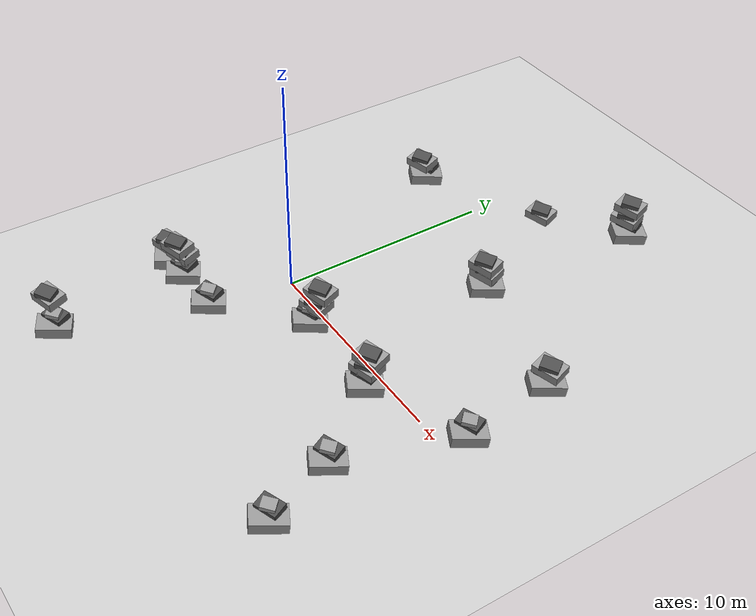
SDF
<sdf version="1.9">
 <world name="disaster_hospital">
  <include>
   <uri>file:///home/robotics/.gazebo/models/ground_plane</uri>
   <static>true</static>
   <name>ground_plane</name>
   <pose>0 0 -0.1 0 -0 0</pose>
  </include>
  <model name="rubble2_03">
   <static>true</static>
   <pose>-2.72268 -10.0337 0 0 -0 0</pose>
   <link name="link">
    <collision name="base_collision">
     <pose>0 0 0.25 0.05 0.1 1.1</pose>
     <geometry><box><size>1.5 1 0.5</size></box></geometry>
    </collision>
    <visual name="base_visual">
     <pose>0 0 0.25 0.05 0.1 1.1</pose>
     <geometry><box><size>1.5 1 0.5</size></box></geometry>
     <material>
      <script><uri>file://media/materials/scripts/gazebo.material</uri><name>Gazebo/Grey</name></script>
     </material>
    </visual>
    <collision name="mid_collision">
     <pose>-0.2 0.2 0.6 0.15 0.05 0.4</pose>
     <geometry><box><size>1 0.7 0.3</size></box></geometry>
    </collision>
    <visual name="mid_visual">
     <pose>-0.2 0.2 0.6 0.15 0.05 0.4</pose>
     <geometry><box><size>1 0.7 0.3</size></box></geometry>
     <material>
      <script><uri>file://media/materials/scripts/gazebo.material</uri><name>Gazebo/DarkGrey</name></script>
     </material>
    </visual>
    <collision name="top_collision">
     <pose>-0.1 0.1 0.85 0.2 0.15 0.8</pose>
     <geometry><box><size>0.6 0.5 0.25</size></box></geometry>
    </collision>
    <visual name="top_visual">
     <pose>-0.1 0.1 0.85 0.2 0.15 0.8</pose>
     <geometry><box><size>0.6 0.5 0.25</size></box></geometry>
     <material>
      <script><uri>file://media/materials/scripts/gazebo.material</uri><name>Gazebo/Grey</name></script>
     </material>
    </visual>
    <inertial>
     <mass>1</mass>
     <inertia><ixx>1</ixx><ixy>0</ixy><ixz>0</ixz><iyy>1</iyy><iyz>0</iyz><izz>1</izz></inertia>
    </inertial>
   </link>
  </model>
  <model name="rubble2_04">
   <static>true</static>
   <pose>2.77458 -0.70412 0 0 -0 0</pose>
   <link name="link">
    <collision name="base_collision">
     <pose>0 0 0.25 0.05 0.1 1.1</pose>
     <geometry><box><size>1.5 1 0.5</size></box></geometry>
    </collision>
    <visual name="base_visual">
     <pose>0 0 0.25 0.05 0.1 1.1</pose>
     <geometry><box><size>1.5 1 0.5</size></box></geometry>
     <material>
      <script><uri>file://media/materials/scripts/gazebo.material</uri><name>Gazebo/Grey</name></script>
     </material>
    </visual>
    <collision name="mid_collision">
     <pose>-0.2 0.2 0.6 0.15 0.05 0.4</pose>
     <geometry><box><size>1 0.7 0.3</size></box></geometry>
    </collision>
    <visual name="mid_visual">
     <pose>-0.2 0.2 0.6 0.15 0.05 0.4</pose>
     <geometry><box><size>1 0.7 0.3</size></box></geometry>
     <material>
      <script><uri>file://media/materials/scripts/gazebo.material</uri><name>Gazebo/DarkGrey</name></script>
     </material>
    </visual>
    <collision name="top_collision">
     <pose>-0.1 0.1 0.85 0.2 0.15 0.8</pose>
     <geometry><box><size>0.6 0.5 0.25</size></box></geometry>
    </collision>
    <visual name="top_visual">
     <pose>-0.1 0.1 0.85 0.2 0.15 0.8</pose>
     <geometry><box><size>0.6 0.5 0.25</size></box></geometry>
     <material>
      <script><uri>file://media/materials/scripts/gazebo.material</uri><name>Gazebo/Grey</name></script>
     </material>
    </visual>
    <inertial>
     <mass>1</mass>
     <inertia><ixx>1</ixx><ixy>0</ixy><ixz>0</ixz><iyy>1</iyy><iyz>0</iyz><izz>1</izz></inertia>
    </inertial>
   </link>
  </model>
  <model name="rubble1_06">
   <static>true</static>
   <pose>2.80754 -0.369767 0.854105 0 -0 0</pose>
   <link name="link">
    <collision name="base_collision">
     <pose>0 0 0.2 0.1 0.05 0.3</pose>
     <geometry><box><size>1.2 0.9 0.4</size></box></geometry>
    </collision>
    <visual name="base_visual">
     <pose>0 0 0.2 0.1 0.05 0.3</pose>
     <geometry><box><size>1.2 0.9 0.4</size></box></geometry>
     <material>
      <script><uri>file://media/materials/scripts/gazebo.material</uri><name>Gazebo/Grey</name></script>
     </material>
    </visual>
    <collision name="top_collision">
     <pose>0.1 -0.1 0.5 0.2 0.1 0.6</pose>
     <geometry><box><size>0.8 0.6 0.3</size></box></geometry>
    </collision>
    <visual name="top_visual">
     <pose>0.1 -0.1 0.5 0.2 0.1 0.6</pose>
     <geometry><box><size>0.8 0.6 0.3</size></box></geometry>
     <material>
      <script><uri>file://media/materials/scripts/gazebo.material</uri><name>Gazebo/DarkGrey</name></script>
     </material>
    </visual>
    <inertial>
     <mass>1</mass>
     <inertia><ixx>1</ixx><ixy>0</ixy><ixz>0</ixz><iyy>1</iyy><iyz>0</iyz><izz>1</izz></inertia>
    </inertial>
   </link>
  </model>
  <model name="rubble2_05">
   <static>true</static>
   <pose>5 7 0 0 -0 0</pose>
   <link name="link">
    <collision name="base_collision">
     <pose>0 0 0.25 0.05 0.1 1.1</pose>
     <geometry><box><size>1.5 1 0.5</size></box></geometry>
    </collision>
    <visual name="base_visual">
     <pose>0 0 0.25 0.05 0.1 1.1</pose>
     <geometry><box><size>1.5 1 0.5</size></box></geometry>
     <material>
      <script><uri>file://media/materials/scripts/gazebo.material</uri><name>Gazebo/Grey</name></script>
     </material>
    </visual>
    <collision name="mid_collision">
     <pose>-0.2 0.2 0.6 0.15 0.05 0.4</pose>
     <geometry><box><size>1 0.7 0.3</size></box></geometry>
    </collision>
    <visual name="mid_visual">
     <pose>-0.2 0.2 0.6 0.15 0.05 0.4</pose>
     <geometry><box><size>1 0.7 0.3</size></box></geometry>
     <material>
      <script><uri>file://media/materials/scripts/gazebo.material</uri><name>Gazebo/DarkGrey</name></script>
     </material>
    </visual>
    <collision name="top_collision">
     <pose>-0.1 0.1 0.85 0.2 0.15 0.8</pose>
     <geometry><box><size>0.6 0.5 0.25</size></box></geometry>
    </collision>
    <visual name="top_visual">
     <pose>-0.1 0.1 0.85 0.2 0.15 0.8</pose>
     <geometry><box><size>0.6 0.5 0.25</size></box></geometry>
     <material>
      <script><uri>file://media/materials/scripts/gazebo.material</uri><name>Gazebo/Grey</name></script>
     </material>
    </visual>
    <inertial>
     <mass>1</mass>
     <inertia><ixx>1</ixx><ixy>0</ixy><ixz>0</ixz><iyy>1</iyy><iyz>0</iyz><izz>1</izz></inertia>
    </inertial>
   </link>
  </model>
  <model name="rubble2_07">
   <static>true</static>
   <pose>-4.21594 -3.83818 0 0 -0 0</pose>
   <link name="link">
    <collision name="base_collision">
     <pose>0 0 0.25 0.05 0.1 1.1</pose>
     <geometry><box><size>1.5 1 0.5</size></box></geometry>
    </collision>
    <visual name="base_visual">
     <pose>0 0 0.25 0.05 0.1 1.1</pose>
     <geometry><box><size>1.5 1 0.5</size></box></geometry>
     <material>
      <script><uri>file://media/materials/scripts/gazebo.material</uri><name>Gazebo/Grey</name></script>
     </material>
    </visual>
    <collision name="mid_collision">
     <pose>-0.2 0.2 0.6 0.15 0.05 0.4</pose>
     <geometry><box><size>1 0.7 0.3</size></box></geometry>
    </collision>
    <visual name="mid_visual">
     <pose>-0.2 0.2 0.6 0.15 0.05 0.4</pose>
     <geometry><box><size>1 0.7 0.3</size></box></geometry>
     <material>
      <script><uri>file://media/materials/scripts/gazebo.material</uri><name>Gazebo/DarkGrey</name></script>
     </material>
    </visual>
    <collision name="top_collision">
     <pose>-0.1 0.1 0.85 0.2 0.15 0.8</pose>
     <geometry><box><size>0.6 0.5 0.25</size></box></geometry>
    </collision>
    <visual name="top_visual">
     <pose>-0.1 0.1 0.85 0.2 0.15 0.8</pose>
     <geometry><box><size>0.6 0.5 0.25</size></box></geometry>
     <material>
      <script><uri>file://media/materials/scripts/gazebo.material</uri><name>Gazebo/Grey</name></script>
     </material>
    </visual>
    <inertial>
     <mass>1</mass>
     <inertia><ixx>1</ixx><ixy>0</ixy><ixz>0</ixz><iyy>1</iyy><iyz>0</iyz><izz>1</izz></inertia>
    </inertial>
   </link>
  </model>
  <model name="rubble2_08">
   <static>true</static>
   <pose>-2.99667 -3.84545 0 0 -0 0</pose>
   <link name="link">
    <collision name="base_collision">
     <pose>0 0 0.25 0.05 0.1 1.1</pose>
     <geometry><box><size>1.5 1 0.5</size></box></geometry>
    </collision>
    <visual name="base_visual">
     <pose>0 0 0.25 0.05 0.1 1.1</pose>
     <geometry><box><size>1.5 1 0.5</size></box></geometry>
     <material>
      <script><uri>file://media/materials/scripts/gazebo.material</uri><name>Gazebo/Grey</name></script>
     </material>
    </visual>
    <collision name="mid_collision">
     <pose>-0.2 0.2 0.6 0.15 0.05 0.4</pose>
     <geometry><box><size>1 0.7 0.3</size></box></geometry>
    </collision>
    <visual name="mid_visual">
     <pose>-0.2 0.2 0.6 0.15 0.05 0.4</pose>
     <geometry><box><size>1 0.7 0.3</size></box></geometry>
     <material>
      <script><uri>file://media/materials/scripts/gazebo.material</uri><name>Gazebo/DarkGrey</name></script>
     </material>
    </visual>
    <collision name="top_collision">
     <pose>-0.1 0.1 0.85 0.2 0.15 0.8</pose>
     <geometry><box><size>0.6 0.5 0.25</size></box></geometry>
    </collision>
    <visual name="top_visual">
     <pose>-0.1 0.1 0.85 0.2 0.15 0.8</pose>
     <geometry><box><size>0.6 0.5 0.25</size></box></geometry>
     <material>
      <script><uri>file://media/materials/scripts/gazebo.material</uri><name>Gazebo/Grey</name></script>
     </material>
    </visual>
    <inertial>
     <mass>1</mass>
     <inertia><ixx>1</ixx><ixy>0</ixy><ixz>0</ixz><iyy>1</iyy><iyz>0</iyz><izz>1</izz></inertia>
    </inertial>
   </link>
  </model>
  <model name="rubble2_09">
   <static>true</static>
   <pose>11.1684 5.37063 0 0 -0 0</pose>
   <link name="link">
    <collision name="base_collision">
     <pose>0 0 0.25 0.05 0.1 1.1</pose>
     <geometry><box><size>1.5 1 0.5</size></box></geometry>
    </collision>
    <visual name="base_visual">
     <pose>0 0 0.25 0.05 0.1 1.1</pose>
     <geometry><box><size>1.5 1 0.5</size></box></geometry>
     <material>
      <script><uri>file://media/materials/scripts/gazebo.material</uri><name>Gazebo/Grey</name></script>
     </material>
    </visual>
    <collision name="mid_collision">
     <pose>-0.2 0.2 0.6 0.15 0.05 0.4</pose>
     <geometry><box><size>1 0.7 0.3</size></box></geometry>
    </collision>
    <visual name="mid_visual">
     <pose>-0.2 0.2 0.6 0.15 0.05 0.4</pose>
     <geometry><box><size>1 0.7 0.3</size></box></geometry>
     <material>
      <script><uri>file://media/materials/scripts/gazebo.material</uri><name>Gazebo/DarkGrey</name></script>
     </material>
    </visual>
    <collision name="top_collision">
     <pose>-0.1 0.1 0.85 0.2 0.15 0.8</pose>
     <geometry><box><size>0.6 0.5 0.25</size></box></geometry>
    </collision>
    <visual name="top_visual">
     <pose>-0.1 0.1 0.85 0.2 0.15 0.8</pose>
     <geometry><box><size>0.6 0.5 0.25</size></box></geometry>
     <material>
      <script><uri>file://media/materials/scripts/gazebo.material</uri><name>Gazebo/Grey</name></script>
     </material>
    </visual>
    <inertial>
     <mass>1</mass>
     <inertia><ixx>1</ixx><ixy>0</ixy><ixz>0</ixz><iyy>1</iyy><iyz>0</iyz><izz>1</izz></inertia>
    </inertial>
   </link>
  </model>
  <model name="rubble2_10">
   <static>true</static>
   <pose>-3.4664 9.69034 0 0 -0 0</pose>
   <link name="link">
    <collision name="base_collision">
     <pose>0 0 0.25 0.05 0.1 1.1</pose>
     <geometry><box><size>1.5 1 0.5</size></box></geometry>
    </collision>
    <visual name="base_visual">
     <pose>0 0 0.25 0.05 0.1 1.1</pose>
     <geometry><box><size>1.5 1 0.5</size></box></geometry>
     <material>
      <script><uri>file://media/materials/scripts/gazebo.material</uri><name>Gazebo/Grey</name></script>
     </material>
    </visual>
    <collision name="mid_collision">
     <pose>-0.2 0.2 0.6 0.15 0.05 0.4</pose>
     <geometry><box><size>1 0.7 0.3</size></box></geometry>
    </collision>
    <visual name="mid_visual">
     <pose>-0.2 0.2 0.6 0.15 0.05 0.4</pose>
     <geometry><box><size>1 0.7 0.3</size></box></geometry>
     <material>
      <script><uri>file://media/materials/scripts/gazebo.material</uri><name>Gazebo/DarkGrey</name></script>
     </material>
    </visual>
    <collision name="top_collision">
     <pose>-0.1 0.1 0.85 0.2 0.15 0.8</pose>
     <geometry><box><size>0.6 0.5 0.25</size></box></geometry>
    </collision>
    <visual name="top_visual">
     <pose>-0.1 0.1 0.85 0.2 0.15 0.8</pose>
     <geometry><box><size>0.6 0.5 0.25</size></box></geometry>
     <material>
      <script><uri>file://media/materials/scripts/gazebo.material</uri><name>Gazebo/Grey</name></script>
     </material>
    </visual>
    <inertial>
     <mass>1</mass>
     <inertia><ixx>1</ixx><ixy>0</ixy><ixz>0</ixz><iyy>1</iyy><iyz>0</iyz><izz>1</izz></inertia>
    </inertial>
   </link>
  </model>
  <model name="rubble1_07">
   <static>true</static>
   <pose>4.98706 6.99691 0.854105 0 -0 0</pose>
   <link name="link">
    <collision name="base_collision">
     <pose>0 0 0.2 0.1 0.05 0.3</pose>
     <geometry><box><size>1.2 0.9 0.4</size></box></geometry>
    </collision>
    <visual name="base_visual">
     <pose>0 0 0.2 0.1 0.05 0.3</pose>
     <geometry><box><size>1.2 0.9 0.4</size></box></geometry>
     <material>
      <script><uri>file://media/materials/scripts/gazebo.material</uri><name>Gazebo/Grey</name></script>
     </material>
    </visual>
    <collision name="top_collision">
     <pose>0.1 -0.1 0.5 0.2 0.1 0.6</pose>
     <geometry><box><size>0.8 0.6 0.3</size></box></geometry>
    </collision>
    <visual name="top_visual">
     <pose>0.1 -0.1 0.5 0.2 0.1 0.6</pose>
     <geometry><box><size>0.8 0.6 0.3</size></box></geometry>
     <material>
      <script><uri>file://media/materials/scripts/gazebo.material</uri><name>Gazebo/DarkGrey</name></script>
     </material>
    </visual>
    <inertial>
     <mass>1</mass>
     <inertia><ixx>1</ixx><ixy>0</ixy><ixz>0</ixz><iyy>1</iyy><iyz>0</iyz><izz>1</izz></inertia>
    </inertial>
   </link>
  </model>
  <model name="rubble1_08">
   <static>true</static>
   <pose>-3.56729 9.54904 0.854105 0 -0 0</pose>
   <link name="link">
    <collision name="base_collision">
     <pose>0 0 0.2 0.1 0.05 0.3</pose>
     <geometry><box><size>1.2 0.9 0.4</size></box></geometry>
    </collision>
    <visual name="base_visual">
     <pose>0 0 0.2 0.1 0.05 0.3</pose>
     <geometry><box><size>1.2 0.9 0.4</size></box></geometry>
     <material>
      <script><uri>file://media/materials/scripts/gazebo.material</uri><name>Gazebo/Grey</name></script>
     </material>
    </visual>
    <collision name="top_collision">
     <pose>0.1 -0.1 0.5 0.2 0.1 0.6</pose>
     <geometry><box><size>0.8 0.6 0.3</size></box></geometry>
    </collision>
    <visual name="top_visual">
     <pose>0.1 -0.1 0.5 0.2 0.1 0.6</pose>
     <geometry><box><size>0.8 0.6 0.3</size></box></geometry>
     <material>
      <script><uri>file://media/materials/scripts/gazebo.material</uri><name>Gazebo/DarkGrey</name></script>
     </material>
    </visual>
    <inertial>
     <mass>1</mass>
     <inertia><ixx>1</ixx><ixy>0</ixy><ixz>0</ixz><iyy>1</iyy><iyz>0</iyz><izz>1</izz></inertia>
    </inertial>
   </link>
  </model>
  <model name="rubble1_10">
   <static>true</static>
   <pose>-4.36239 -3.80436 0.854105 0 -0 0</pose>
   <link name="link">
    <collision name="base_collision">
     <pose>0 0 0.2 0.1 0.05 0.3</pose>
     <geometry><box><size>1.2 0.9 0.4</size></box></geometry>
    </collision>
    <visual name="base_visual">
     <pose>0 0 0.2 0.1 0.05 0.3</pose>
     <geometry><box><size>1.2 0.9 0.4</size></box></geometry>
     <material>
      <script><uri>file://media/materials/scripts/gazebo.material</uri><name>Gazebo/Grey</name></script>
     </material>
    </visual>
    <collision name="top_collision">
     <pose>0.1 -0.1 0.5 0.2 0.1 0.6</pose>
     <geometry><box><size>0.8 0.6 0.3</size></box></geometry>
    </collision>
    <visual name="top_visual">
     <pose>0.1 -0.1 0.5 0.2 0.1 0.6</pose>
     <geometry><box><size>0.8 0.6 0.3</size></box></geometry>
     <material>
      <script><uri>file://media/materials/scripts/gazebo.material</uri><name>Gazebo/DarkGrey</name></script>
     </material>
    </visual>
    <inertial>
     <mass>1</mass>
     <inertia><ixx>1</ixx><ixy>0</ixy><ixz>0</ixz><iyy>1</iyy><iyz>0</iyz><izz>1</izz></inertia>
    </inertial>
   </link>
  </model>
  <model name="rubble1_11">
   <static>true</static>
   <pose>-3.3633 -3.61102 0.854105 0 -0 0</pose>
   <link name="link">
    <collision name="base_collision">
     <pose>0 0 0.2 0.1 0.05 0.3</pose>
     <geometry><box><size>1.2 0.9 0.4</size></box></geometry>
    </collision>
    <visual name="base_visual">
     <pose>0 0 0.2 0.1 0.05 0.3</pose>
     <geometry><box><size>1.2 0.9 0.4</size></box></geometry>
     <material>
      <script><uri>file://media/materials/scripts/gazebo.material</uri><name>Gazebo/Grey</name></script>
     </material>
    </visual>
    <collision name="top_collision">
     <pose>0.1 -0.1 0.5 0.2 0.1 0.6</pose>
     <geometry><box><size>0.8 0.6 0.3</size></box></geometry>
    </collision>
    <visual name="top_visual">
     <pose>0.1 -0.1 0.5 0.2 0.1 0.6</pose>
     <geometry><box><size>0.8 0.6 0.3</size></box></geometry>
     <material>
      <script><uri>file://media/materials/scripts/gazebo.material</uri><name>Gazebo/DarkGrey</name></script>
     </material>
    </visual>
    <inertial>
     <mass>1</mass>
     <inertia><ixx>1</ixx><ixy>0</ixy><ixz>0</ixz><iyy>1</iyy><iyz>0</iyz><izz>1</izz></inertia>
    </inertial>
   </link>
  </model>
  <model name="rubble2_15">
   <static>true</static>
   <pose>7.27639 -0.833168 0 0 -0 0</pose>
   <link name="link">
    <collision name="base_collision">
     <pose>0 0 0.25 0.05 0.1 1.1</pose>
     <geometry><box><size>1.5 1 0.5</size></box></geometry>
    </collision>
    <visual name="base_visual">
     <pose>0 0 0.25 0.05 0.1 1.1</pose>
     <geometry><box><size>1.5 1 0.5</size></box></geometry>
     <material>
      <script><uri>file://media/materials/scripts/gazebo.material</uri><name>Gazebo/Grey</name></script>
     </material>
    </visual>
    <collision name="mid_collision">
     <pose>-0.2 0.2 0.6 0.15 0.05 0.4</pose>
     <geometry><box><size>1 0.7 0.3</size></box></geometry>
    </collision>
    <visual name="mid_visual">
     <pose>-0.2 0.2 0.6 0.15 0.05 0.4</pose>
     <geometry><box><size>1 0.7 0.3</size></box></geometry>
     <material>
      <script><uri>file://media/materials/scripts/gazebo.material</uri><name>Gazebo/DarkGrey</name></script>
     </material>
    </visual>
    <collision name="top_collision">
     <pose>-0.1 0.1 0.85 0.2 0.15 0.8</pose>
     <geometry><box><size>0.6 0.5 0.25</size></box></geometry>
    </collision>
    <visual name="top_visual">
     <pose>-0.1 0.1 0.85 0.2 0.15 0.8</pose>
     <geometry><box><size>0.6 0.5 0.25</size></box></geometry>
     <material>
      <script><uri>file://media/materials/scripts/gazebo.material</uri><name>Gazebo/Grey</name></script>
     </material>
    </visual>
    <inertial>
     <mass>1</mass>
     <inertia><ixx>1</ixx><ixy>0</ixy><ixz>0</ixz><iyy>1</iyy><iyz>0</iyz><izz>1</izz></inertia>
    </inertial>
   </link>
  </model>
  <model name="rubble2_20">
   <static>true</static>
   <pose>5.5008 14.878 0 0 -0 0</pose>
   <link name="link">
    <collision name="base_collision">
     <pose>0 0 0.25 0.05 0.1 1.1</pose>
     <geometry><box><size>1.5 1 0.5</size></box></geometry>
    </collision>
    <visual name="base_visual">
     <pose>0 0 0.25 0.05 0.1 1.1</pose>
     <geometry><box><size>1.5 1 0.5</size></box></geometry>
     <material>
      <script><uri>file://media/materials/scripts/gazebo.material</uri><name>Gazebo/Grey</name></script>
     </material>
    </visual>
    <collision name="mid_collision">
     <pose>-0.2 0.2 0.6 0.15 0.05 0.4</pose>
     <geometry><box><size>1 0.7 0.3</size></box></geometry>
    </collision>
    <visual name="mid_visual">
     <pose>-0.2 0.2 0.6 0.15 0.05 0.4</pose>
     <geometry><box><size>1 0.7 0.3</size></box></geometry>
     <material>
      <script><uri>file://media/materials/scripts/gazebo.material</uri><name>Gazebo/DarkGrey</name></script>
     </material>
    </visual>
    <collision name="top_collision">
     <pose>-0.1 0.1 0.85 0.2 0.15 0.8</pose>
     <geometry><box><size>0.6 0.5 0.25</size></box></geometry>
    </collision>
    <visual name="top_visual">
     <pose>-0.1 0.1 0.85 0.2 0.15 0.8</pose>
     <geometry><box><size>0.6 0.5 0.25</size></box></geometry>
     <material>
      <script><uri>file://media/materials/scripts/gazebo.material</uri><name>Gazebo/Grey</name></script>
     </material>
    </visual>
    <inertial>
     <mass>1</mass>
     <inertia><ixx>1</ixx><ixy>0</ixy><ixz>0</ixz><iyy>1</iyy><iyz>0</iyz><izz>1</izz></inertia>
    </inertial>
   </link>
  </model>
  <model name="rubble1_14">
   <static>true</static>
   <pose>11.2062 5.44374 0.854105 0 -0 0</pose>
   <link name="link">
    <collision name="base_collision">
     <pose>0 0 0.2 0.1 0.05 0.3</pose>
     <geometry><box><size>1.2 0.9 0.4</size></box></geometry>
    </collision>
    <visual name="base_visual">
     <pose>0 0 0.2 0.1 0.05 0.3</pose>
     <geometry><box><size>1.2 0.9 0.4</size></box></geometry>
     <material>
      <script><uri>file://media/materials/scripts/gazebo.material</uri><name>Gazebo/Grey</name></script>
     </material>
    </visual>
    <collision name="top_collision">
     <pose>0.1 -0.1 0.5 0.2 0.1 0.6</pose>
     <geometry><box><size>0.8 0.6 0.3</size></box></geometry>
    </collision>
    <visual name="top_visual">
     <pose>0.1 -0.1 0.5 0.2 0.1 0.6</pose>
     <geometry><box><size>0.8 0.6 0.3</size></box></geometry>
     <material>
      <script><uri>file://media/materials/scripts/gazebo.material</uri><name>Gazebo/DarkGrey</name></script>
     </material>
    </visual>
    <inertial>
     <mass>1</mass>
     <inertia><ixx>1</ixx><ixy>0</ixy><ixz>0</ixz><iyy>1</iyy><iyz>0</iyz><izz>1</izz></inertia>
    </inertial>
   </link>
  </model>
  <model name="rubble1_15">
   <static>true</static>
   <pose>7.18449 -0.649806 0.854105 0 -0 0</pose>
   <link name="link">
    <collision name="base_collision">
     <pose>0 0 0.2 0.1 0.05 0.3</pose>
     <geometry><box><size>1.2 0.9 0.4</size></box></geometry>
    </collision>
    <visual name="base_visual">
     <pose>0 0 0.2 0.1 0.05 0.3</pose>
     <geometry><box><size>1.2 0.9 0.4</size></box></geometry>
     <material>
      <script><uri>file://media/materials/scripts/gazebo.material</uri><name>Gazebo/Grey</name></script>
     </material>
    </visual>
    <collision name="top_collision">
     <pose>0.1 -0.1 0.5 0.2 0.1 0.6</pose>
     <geometry><box><size>0.8 0.6 0.3</size></box></geometry>
    </collision>
    <visual name="top_visual">
     <pose>0.1 -0.1 0.5 0.2 0.1 0.6</pose>
     <geometry><box><size>0.8 0.6 0.3</size></box></geometry>
     <material>
      <script><uri>file://media/materials/scripts/gazebo.material</uri><name>Gazebo/DarkGrey</name></script>
     </material>
    </visual>
    <inertial>
     <mass>1</mass>
     <inertia><ixx>1</ixx><ixy>0</ixy><ixz>0</ixz><iyy>1</iyy><iyz>0</iyz><izz>1</izz></inertia>
    </inertial>
   </link>
  </model>
  <model name="rubble1_23">
   <static>true</static>
   <pose>5.31189 14.8551 0.854105 0 -0 0</pose>
   <link name="link">
    <collision name="base_collision">
     <pose>0 0 0.2 0.1 0.05 0.3</pose>
     <geometry><box><size>1.2 0.9 0.4</size></box></geometry>
    </collision>
    <visual name="base_visual">
     <pose>0 0 0.2 0.1 0.05 0.3</pose>
     <geometry><box><size>1.2 0.9 0.4</size></box></geometry>
     <material>
      <script><uri>file://media/materials/scripts/gazebo.material</uri><name>Gazebo/Grey</name></script>
     </material>
    </visual>
    <collision name="top_collision">
     <pose>0.1 -0.1 0.5 0.2 0.1 0.6</pose>
     <geometry><box><size>0.8 0.6 0.3</size></box></geometry>
    </collision>
    <visual name="top_visual">
     <pose>0.1 -0.1 0.5 0.2 0.1 0.6</pose>
     <geometry><box><size>0.8 0.6 0.3</size></box></geometry>
     <material>
      <script><uri>file://media/materials/scripts/gazebo.material</uri><name>Gazebo/DarkGrey</name></script>
     </material>
    </visual>
    <inertial>
     <mass>1</mass>
     <inertia><ixx>1</ixx><ixy>0</ixy><ixz>0</ixz><iyy>1</iyy><iyz>0</iyz><izz>1</izz></inertia>
    </inertial>
   </link>
  </model>
  <model name="rubble1_27">
   <static>true</static>
   <pose>-3.15276 -3.89732 1.49923 0 -0 0</pose>
   <link name="link">
    <collision name="base_collision">
     <pose>0 0 0.2 0.1 0.05 0.3</pose>
     <geometry><box><size>1.2 0.9 0.4</size></box></geometry>
    </collision>
    <visual name="base_visual">
     <pose>0 0 0.2 0.1 0.05 0.3</pose>
     <geometry><box><size>1.2 0.9 0.4</size></box></geometry>
     <material>
      <script><uri>file://media/materials/scripts/gazebo.material</uri><name>Gazebo/Grey</name></script>
     </material>
    </visual>
    <collision name="top_collision">
     <pose>0.1 -0.1 0.5 0.2 0.1 0.6</pose>
     <geometry><box><size>0.8 0.6 0.3</size></box></geometry>
    </collision>
    <visual name="top_visual">
     <pose>0.1 -0.1 0.5 0.2 0.1 0.6</pose>
     <geometry><box><size>0.8 0.6 0.3</size></box></geometry>
     <material>
      <script><uri>file://media/materials/scripts/gazebo.material</uri><name>Gazebo/DarkGrey</name></script>
     </material>
    </visual>
    <inertial>
     <mass>1</mass>
     <inertia><ixx>1</ixx><ixy>0</ixy><ixz>0</ixz><iyy>1</iyy><iyz>0</iyz><izz>1</izz></inertia>
    </inertial>
   </link>
  </model>
  <model name="rubble1_31">
   <static>true</static>
   <pose>2.91622 -0.201774 1.49923 0 -0 0</pose>
   <link name="link">
    <collision name="base_collision">
     <pose>0 0 0.2 0.1 0.05 0.3</pose>
     <geometry><box><size>1.2 0.9 0.4</size></box></geometry>
    </collision>
    <visual name="base_visual">
     <pose>0 0 0.2 0.1 0.05 0.3</pose>
     <geometry><box><size>1.2 0.9 0.4</size></box></geometry>
     <material>
      <script><uri>file://media/materials/scripts/gazebo.material</uri><name>Gazebo/Grey</name></script>
     </material>
    </visual>
    <collision name="top_collision">
     <pose>0.1 -0.1 0.5 0.2 0.1 0.6</pose>
     <geometry><box><size>0.8 0.6 0.3</size></box></geometry>
    </collision>
    <visual name="top_visual">
     <pose>0.1 -0.1 0.5 0.2 0.1 0.6</pose>
     <geometry><box><size>0.8 0.6 0.3</size></box></geometry>
     <material>
      <script><uri>file://media/materials/scripts/gazebo.material</uri><name>Gazebo/DarkGrey</name></script>
     </material>
    </visual>
    <inertial>
     <mass>1</mass>
     <inertia><ixx>1</ixx><ixy>0</ixy><ixz>0</ixz><iyy>1</iyy><iyz>0</iyz><izz>1</izz></inertia>
    </inertial>
   </link>
  </model>
  <model name="rubble1_32">
   <static>true</static>
   <pose>5.15303 6.76415 1.49923 0 -0 0</pose>
   <link name="link">
    <collision name="base_collision">
     <pose>0 0 0.2 0.1 0.05 0.3</pose>
     <geometry><box><size>1.2 0.9 0.4</size></box></geometry>
    </collision>
    <visual name="base_visual">
     <pose>0 0 0.2 0.1 0.05 0.3</pose>
     <geometry><box><size>1.2 0.9 0.4</size></box></geometry>
     <material>
      <script><uri>file://media/materials/scripts/gazebo.material</uri><name>Gazebo/Grey</name></script>
     </material>
    </visual>
    <collision name="top_collision">
     <pose>0.1 -0.1 0.5 0.2 0.1 0.6</pose>
     <geometry><box><size>0.8 0.6 0.3</size></box></geometry>
    </collision>
    <visual name="top_visual">
     <pose>0.1 -0.1 0.5 0.2 0.1 0.6</pose>
     <geometry><box><size>0.8 0.6 0.3</size></box></geometry>
     <material>
      <script><uri>file://media/materials/scripts/gazebo.material</uri><name>Gazebo/DarkGrey</name></script>
     </material>
    </visual>
    <inertial>
     <mass>1</mass>
     <inertia><ixx>1</ixx><ixy>0</ixy><ixz>0</ixz><iyy>1</iyy><iyz>0</iyz><izz>1</izz></inertia>
    </inertial>
   </link>
  </model>
  <model name="rubble1_33">
   <static>true</static>
   <pose>7.35074 -0.596678 1.49923 0 -0 0</pose>
   <link name="link">
    <collision name="base_collision">
     <pose>0 0 0.2 0.1 0.05 0.3</pose>
     <geometry><box><size>1.2 0.9 0.4</size></box></geometry>
    </collision>
    <visual name="base_visual">
     <pose>0 0 0.2 0.1 0.05 0.3</pose>
     <geometry><box><size>1.2 0.9 0.4</size></box></geometry>
     <material>
      <script><uri>file://media/materials/scripts/gazebo.material</uri><name>Gazebo/Grey</name></script>
     </material>
    </visual>
    <collision name="top_collision">
     <pose>0.1 -0.1 0.5 0.2 0.1 0.6</pose>
     <geometry><box><size>0.8 0.6 0.3</size></box></geometry>
    </collision>
    <visual name="top_visual">
     <pose>0.1 -0.1 0.5 0.2 0.1 0.6</pose>
     <geometry><box><size>0.8 0.6 0.3</size></box></geometry>
     <material>
      <script><uri>file://media/materials/scripts/gazebo.material</uri><name>Gazebo/DarkGrey</name></script>
     </material>
    </visual>
    <inertial>
     <mass>1</mass>
     <inertia><ixx>1</ixx><ixy>0</ixy><ixz>0</ixz><iyy>1</iyy><iyz>0</iyz><izz>1</izz></inertia>
    </inertial>
   </link>
  </model>
  <model name="rubble1_34">
   <static>true</static>
   <pose>5.39244 14.8956 1.49923 0 -0 0</pose>
   <link name="link">
    <collision name="base_collision">
     <pose>0 0 0.2 0.1 0.05 0.3</pose>
     <geometry><box><size>1.2 0.9 0.4</size></box></geometry>
    </collision>
    <visual name="base_visual">
     <pose>0 0 0.2 0.1 0.05 0.3</pose>
     <geometry><box><size>1.2 0.9 0.4</size></box></geometry>
     <material>
      <script><uri>file://media/materials/scripts/gazebo.material</uri><name>Gazebo/Grey</name></script>
     </material>
    </visual>
    <collision name="top_collision">
     <pose>0.1 -0.1 0.5 0.2 0.1 0.6</pose>
     <geometry><box><size>0.8 0.6 0.3</size></box></geometry>
    </collision>
    <visual name="top_visual">
     <pose>0.1 -0.1 0.5 0.2 0.1 0.6</pose>
     <geometry><box><size>0.8 0.6 0.3</size></box></geometry>
     <material>
      <script><uri>file://media/materials/scripts/gazebo.material</uri><name>Gazebo/DarkGrey</name></script>
     </material>
    </visual>
    <inertial>
     <mass>1</mass>
     <inertia><ixx>1</ixx><ixy>0</ixy><ixz>0</ixz><iyy>1</iyy><iyz>0</iyz><izz>1</izz></inertia>
    </inertial>
   </link>
  </model>
  <model name="rubble_added_72">
   <static>true</static>
   <pose>-2.75785 -9.99881 1.6498 0 -0 0</pose>
   <link name="link">
    <collision name="base_collision">
     <pose>0 0 0.2 0.1 0.05 0.3</pose>
     <geometry><box><size>1.2 0.9 0.4</size></box></geometry>
    </collision>
    <visual name="base_visual">
     <pose>0 0 0.2 0.1 0.05 0.3</pose>
     <geometry><box><size>1.2 0.9 0.4</size></box></geometry>
     <material>
      <script><uri>file://media/materials/scripts/gazebo.material</uri><name>Gazebo/Grey</name></script>
     </material>
    </visual>
    <collision name="top_collision">
     <pose>0.1 -0.1 0.5 0.2 0.1 0.6</pose>
     <geometry><box><size>0.8 0.6 0.3</size></box></geometry>
    </collision>
    <visual name="top_visual">
     <pose>0.1 -0.1 0.5 0.2 0.1 0.6</pose>
     <geometry><box><size>0.8 0.6 0.3</size></box></geometry>
     <material>
      <script><uri>file://media/materials/scripts/gazebo.material</uri><name>Gazebo/DarkGrey</name></script>
     </material>
    </visual>
    <inertial>
     <mass>1</mass>
     <inertia><ixx>1</ixx><ixy>0</ixy><ixz>0</ixz><iyy>1</iyy><iyz>0</iyz><izz>1</izz></inertia>
    </inertial>
   </link>
  </model>
  <model name="rubble_added_70_clone">
   <static>true</static>
   <pose>9.96392 -4.20666 0 0 -0 0</pose>
   <link name="link">
    <collision name="base_collision">
     <pose>0 0 0.25 0.05 0.1 1.1</pose>
     <geometry><box><size>1.5 1 0.5</size></box></geometry>
    </collision>
    <visual name="base_visual">
     <pose>0 0 0.25 0.05 0.1 1.1</pose>
     <geometry><box><size>1.5 1 0.5</size></box></geometry>
     <material>
      <script><uri>file://media/materials/scripts/gazebo.material</uri><name>Gazebo/Grey</name></script>
     </material>
    </visual>
    <collision name="mid_collision">
     <pose>-0.2 0.2 0.6 0.15 0.05 0.4</pose>
     <geometry><box><size>1 0.7 0.3</size></box></geometry>
    </collision>
    <visual name="mid_visual">
     <pose>-0.2 0.2 0.6 0.15 0.05 0.4</pose>
     <geometry><box><size>1 0.7 0.3</size></box></geometry>
     <material>
      <script><uri>file://media/materials/scripts/gazebo.material</uri><name>Gazebo/DarkGrey</name></script>
     </material>
    </visual>
    <collision name="top_collision">
     <pose>-0.1 0.1 0.85 0.2 0.15 0.8</pose>
     <geometry><box><size>0.6 0.5 0.25</size></box></geometry>
    </collision>
    <visual name="top_visual">
     <pose>-0.1 0.1 0.85 0.2 0.15 0.8</pose>
     <geometry><box><size>0.6 0.5 0.25</size></box></geometry>
     <material>
      <script><uri>file://media/materials/scripts/gazebo.material</uri><name>Gazebo/Grey</name></script>
     </material>
    </visual>
    <inertial>
     <mass>1</mass>
     <inertia><ixx>1</ixx><ixy>0</ixy><ixz>0</ixz><iyy>1</iyy><iyz>0</iyz><izz>1</izz></inertia>
    </inertial>
   </link>
  </model>
  <model name="rubble1_21_clone">
   <static>true</static>
   <pose>2.01319 12.5889 -0.067784 0 -0 0</pose>
   <link name="link">
    <collision name="base_collision">
     <pose>0 0 0.2 0.1 0.05 0.3</pose>
     <geometry><box><size>1.2 0.9 0.4</size></box></geometry>
    </collision>
    <visual name="base_visual">
     <pose>0 0 0.2 0.1 0.05 0.3</pose>
     <geometry><box><size>1.2 0.9 0.4</size></box></geometry>
     <material>
      <script><uri>file://media/materials/scripts/gazebo.material</uri><name>Gazebo/Grey</name></script>
     </material>
    </visual>
    <collision name="top_collision">
     <pose>0.1 -0.1 0.5 0.2 0.1 0.6</pose>
     <geometry><box><size>0.8 0.6 0.3</size></box></geometry>
    </collision>
    <visual name="top_visual">
     <pose>0.1 -0.1 0.5 0.2 0.1 0.6</pose>
     <geometry><box><size>0.8 0.6 0.3</size></box></geometry>
     <material>
      <script><uri>file://media/materials/scripts/gazebo.material</uri><name>Gazebo/DarkGrey</name></script>
     </material>
    </visual>
    <inertial>
     <mass>1</mass>
     <inertia><ixx>1</ixx><ixy>0</ixy><ixz>0</ixz><iyy>1</iyy><iyz>0</iyz><izz>1</izz></inertia>
    </inertial>
   </link>
  </model>
  <model name="rubble2_05_clone">
   <static>true</static>
   <pose>-0.616848 -3.80403 0 0 -0 0</pose>
   <link name="link">
    <collision name="base_collision">
     <pose>0 0 0.25 0.05 0.1 1.1</pose>
     <geometry><box><size>1.5 1 0.5</size></box></geometry>
    </collision>
    <visual name="base_visual">
     <pose>0 0 0.25 0.05 0.1 1.1</pose>
     <geometry><box><size>1.5 1 0.5</size></box></geometry>
     <material>
      <script><uri>file://media/materials/scripts/gazebo.material</uri><name>Gazebo/Grey</name></script>
     </material>
    </visual>
    <collision name="mid_collision">
     <pose>-0.2 0.2 0.6 0.15 0.05 0.4</pose>
     <geometry><box><size>1 0.7 0.3</size></box></geometry>
    </collision>
    <visual name="mid_visual">
     <pose>-0.2 0.2 0.6 0.15 0.05 0.4</pose>
     <geometry><box><size>1 0.7 0.3</size></box></geometry>
     <material>
      <script><uri>file://media/materials/scripts/gazebo.material</uri><name>Gazebo/DarkGrey</name></script>
     </material>
    </visual>
    <collision name="top_collision">
     <pose>-0.1 0.1 0.85 0.2 0.15 0.8</pose>
     <geometry><box><size>0.6 0.5 0.25</size></box></geometry>
    </collision>
    <visual name="top_visual">
     <pose>-0.1 0.1 0.85 0.2 0.15 0.8</pose>
     <geometry><box><size>0.6 0.5 0.25</size></box></geometry>
     <material>
      <script><uri>file://media/materials/scripts/gazebo.material</uri><name>Gazebo/Grey</name></script>
     </material>
    </visual>
    <inertial>
     <mass>1</mass>
     <inertia><ixx>1</ixx><ixy>0</ixy><ixz>0</ixz><iyy>1</iyy><iyz>0</iyz><izz>1</izz></inertia>
    </inertial>
   </link>
  </model>
  <model name="rubble2_05_clone_clone">
   <static>true</static>
   <pose>11.1651 -7.44233 0 0 -0 0</pose>
   <link name="link">
    <collision name="base_collision">
     <pose>0 0 0.25 0.05 0.1 1.1</pose>
     <geometry><box><size>1.5 1 0.5</size></box></geometry>
    </collision>
    <visual name="base_visual">
     <pose>0 0 0.25 0.05 0.1 1.1</pose>
     <geometry><box><size>1.5 1 0.5</size></box></geometry>
     <material>
      <script><uri>file://media/materials/scripts/gazebo.material</uri><name>Gazebo/Grey</name></script>
     </material>
    </visual>
    <collision name="mid_collision">
     <pose>-0.2 0.2 0.6 0.15 0.05 0.4</pose>
     <geometry><box><size>1 0.7 0.3</size></box></geometry>
    </collision>
    <visual name="mid_visual">
     <pose>-0.2 0.2 0.6 0.15 0.05 0.4</pose>
     <geometry><box><size>1 0.7 0.3</size></box></geometry>
     <material>
      <script><uri>file://media/materials/scripts/gazebo.material</uri><name>Gazebo/DarkGrey</name></script>
     </material>
    </visual>
    <collision name="top_collision">
     <pose>-0.1 0.1 0.85 0.2 0.15 0.8</pose>
     <geometry><box><size>0.6 0.5 0.25</size></box></geometry>
    </collision>
    <visual name="top_visual">
     <pose>-0.1 0.1 0.85 0.2 0.15 0.8</pose>
     <geometry><box><size>0.6 0.5 0.25</size></box></geometry>
     <material>
      <script><uri>file://media/materials/scripts/gazebo.material</uri><name>Gazebo/Grey</name></script>
     </material>
    </visual>
    <inertial>
     <mass>1</mass>
     <inertia><ixx>1</ixx><ixy>0</ixy><ixz>0</ixz><iyy>1</iyy><iyz>0</iyz><izz>1</izz></inertia>
    </inertial>
   </link>
  </model>
  <model name="rubble2_05_clone_clone_0">
   <static>true</static>
   <pose>11.6929 1.08425 0 0 -0 0</pose>
   <link name="link">
    <collision name="base_collision">
     <pose>0 0 0.25 0.05 0.1 1.1</pose>
     <geometry><box><size>1.5 1 0.5</size></box></geometry>
    </collision>
    <visual name="base_visual">
     <pose>0 0 0.25 0.05 0.1 1.1</pose>
     <geometry><box><size>1.5 1 0.5</size></box></geometry>
     <material>
      <script><uri>file://media/materials/scripts/gazebo.material</uri><name>Gazebo/Grey</name></script>
     </material>
    </visual>
    <collision name="mid_collision">
     <pose>-0.2 0.2 0.6 0.15 0.05 0.4</pose>
     <geometry><box><size>1 0.7 0.3</size></box></geometry>
    </collision>
    <visual name="mid_visual">
     <pose>-0.2 0.2 0.6 0.15 0.05 0.4</pose>
     <geometry><box><size>1 0.7 0.3</size></box></geometry>
     <material>
      <script><uri>file://media/materials/scripts/gazebo.material</uri><name>Gazebo/DarkGrey</name></script>
     </material>
    </visual>
    <collision name="top_collision">
     <pose>-0.1 0.1 0.85 0.2 0.15 0.8</pose>
     <geometry><box><size>0.6 0.5 0.25</size></box></geometry>
    </collision>
    <visual name="top_visual">
     <pose>-0.1 0.1 0.85 0.2 0.15 0.8</pose>
     <geometry><box><size>0.6 0.5 0.25</size></box></geometry>
     <material>
      <script><uri>file://media/materials/scripts/gazebo.material</uri><name>Gazebo/Grey</name></script>
     </material>
    </visual>
    <inertial>
     <mass>1</mass>
     <inertia><ixx>1</ixx><ixy>0</ixy><ixz>0</ixz><iyy>1</iyy><iyz>0</iyz><izz>1</izz></inertia>
    </inertial>
   </link>
  </model>
  <model name="outside_ground_north">
   <static>true</static>
   <pose>0 36.25 0.165474 0 0 0</pose>
   <link name="link">
    <collision name="collision"><geometry><box><size>120.0 47.5 0.02</size></box></geometry></collision>
   </link>
  </model>
  <model name="outside_ground_east">
   <static>true</static>
   <pose>44.0 0 0.165474 0 0 0</pose>
   <link name="link">
    <collision name="collision"><geometry><box><size>32.0 25.0 0.02</size></box></geometry></collision>
   </link>
  </model>
 </world>
</sdf>
